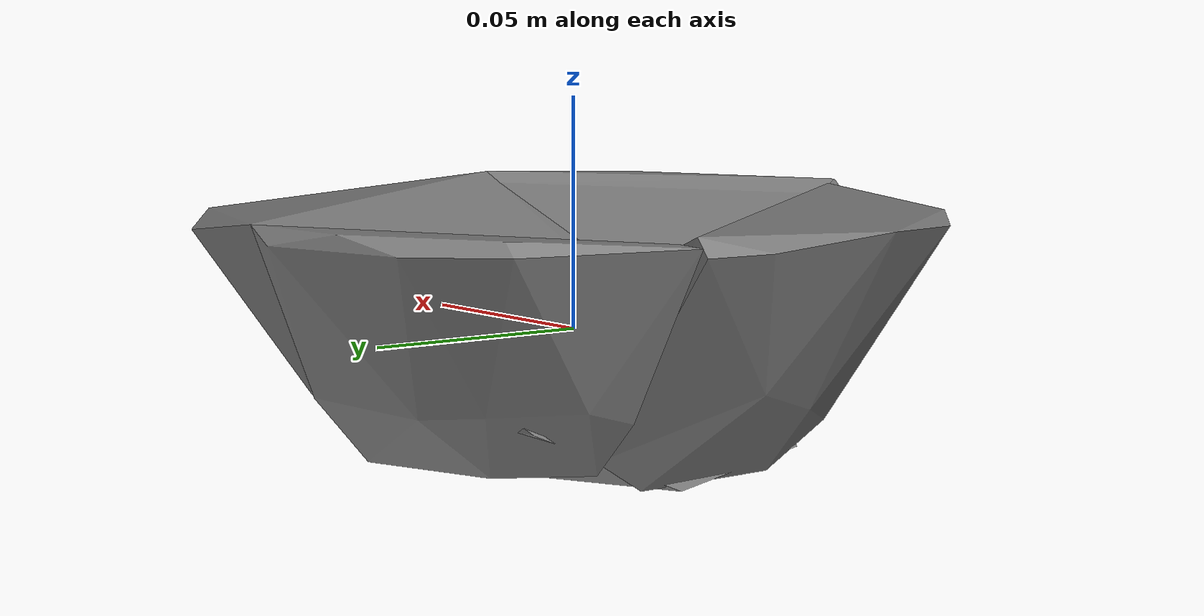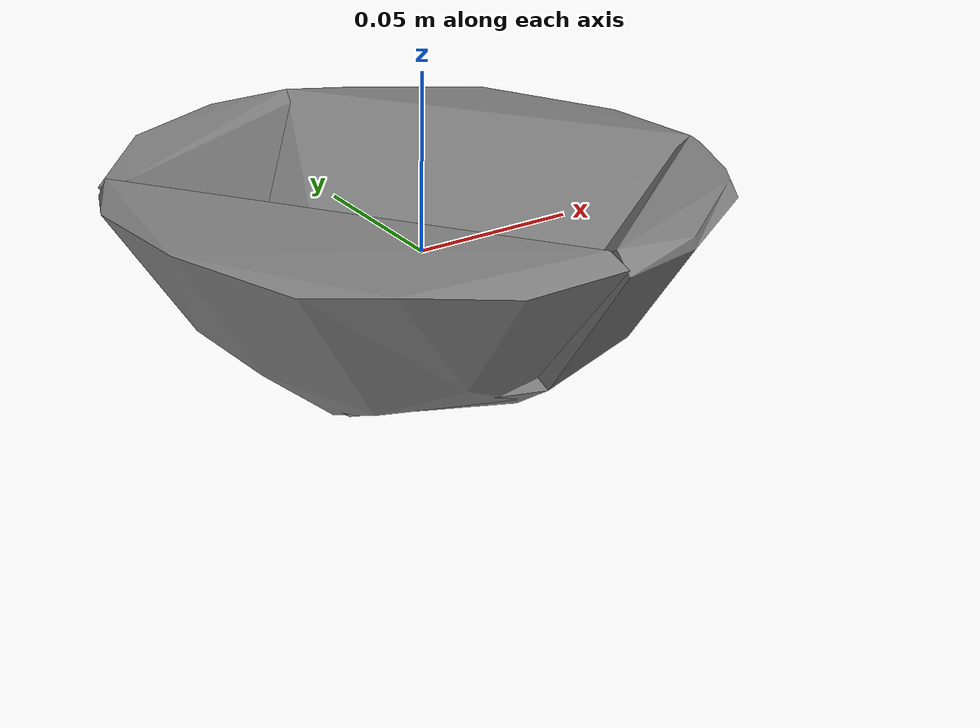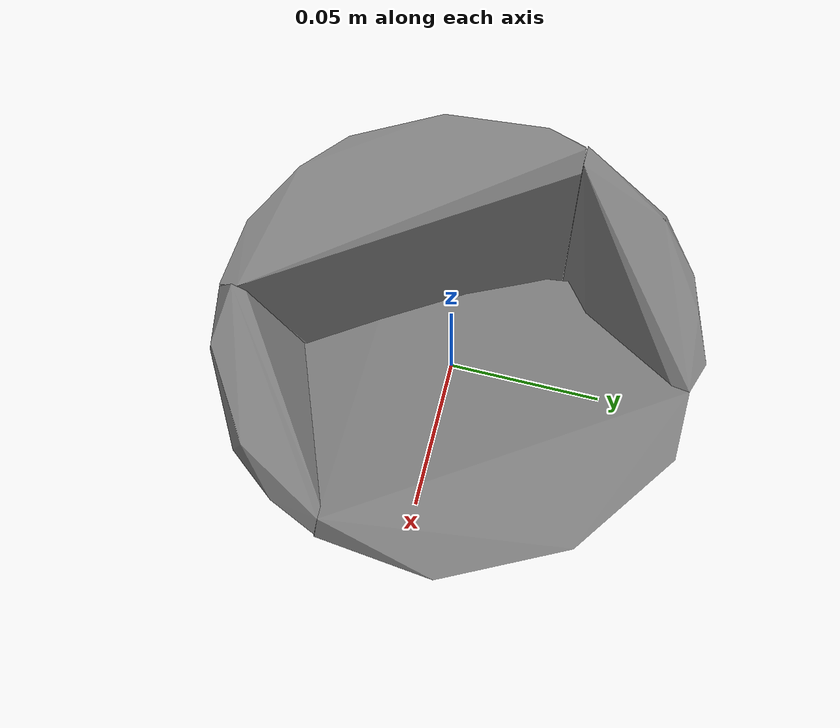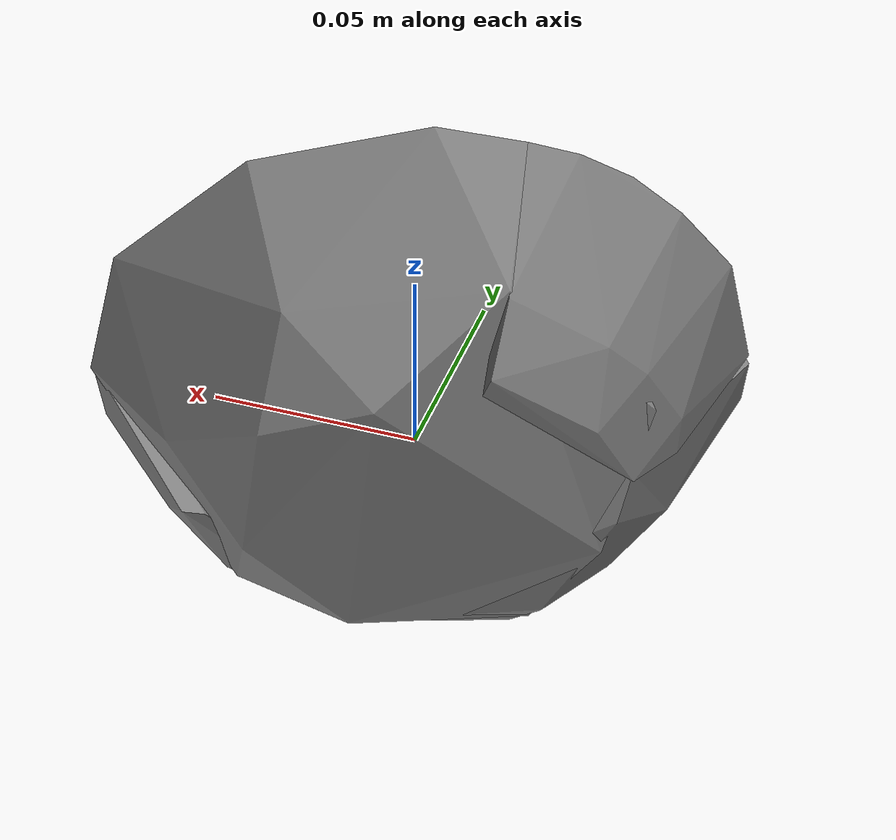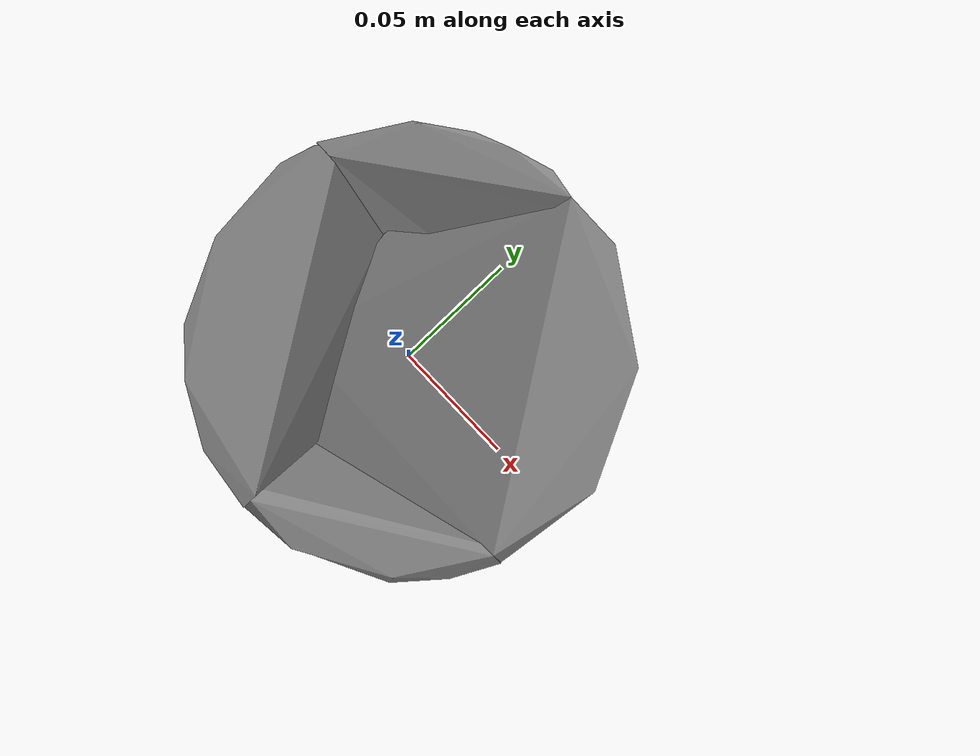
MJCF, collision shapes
<mujoco model="bowl">
  <compiler angle="radian" />

  <asset>
    <mesh name="bowl_visual_mesh" file="bowl/textured.obj" />
    <mesh name="bowl_collision_mesh_0" file="bowl/textured_coacd_0.stl" />
    <mesh name="bowl_collision_mesh_1" file="bowl/textured_coacd_1.stl" />
    <mesh name="bowl_collision_mesh_2" file="bowl/textured_coacd_2.stl" />
    <mesh name="bowl_collision_mesh_3" file="bowl/textured_coacd_3.stl" />
    <texture name="bowl_texture" type="2d" file="bowl/texture_map.png" />
    <material name="bowl_material" texture="bowl_texture" />
  </asset>

  <worldbody>
    <body name="bowl" pos="0 0 0" euler="0 0 0">
      <freejoint name="bowl_joint" />
      <geom name="bowl_visual_geom" type="mesh" mesh="bowl_visual_mesh" material="bowl_material" pos="0.014272485683301438 0.045728422080814235 -0.026772347862895073" euler="0 0 0" contype="0" conaffinity="0" group="0" />
      <geom name="bowl_collision_geom_0" type="mesh" mesh="bowl_collision_mesh_0" pos="0.014272485683301438 0.045728422080814235 -0.026772347862895073" euler="0 0 0" contype="1" conaffinity="1" group="3" />
      <geom name="bowl_collision_geom_1" type="mesh" mesh="bowl_collision_mesh_1" pos="0.014272485683301438 0.045728422080814235 -0.026772347862895073" euler="0 0 0" contype="1" conaffinity="1" group="3" />
      <geom name="bowl_collision_geom_2" type="mesh" mesh="bowl_collision_mesh_2" pos="0.014272485683301438 0.045728422080814235 -0.026772347862895073" euler="0 0 0" contype="1" conaffinity="1" group="3" />
      <geom name="bowl_collision_geom_3" type="mesh" mesh="bowl_collision_mesh_3" pos="0.014272485683301438 0.045728422080814235 -0.026772347862895073" euler="0 0 0" contype="1" conaffinity="1" group="3" />
      <inertial pos="0 0 0" euler="0 0 0" mass="0.147" diaginertia="0.001 0.001 0.001" />
    </body>
  </worldbody>
</mujoco>
